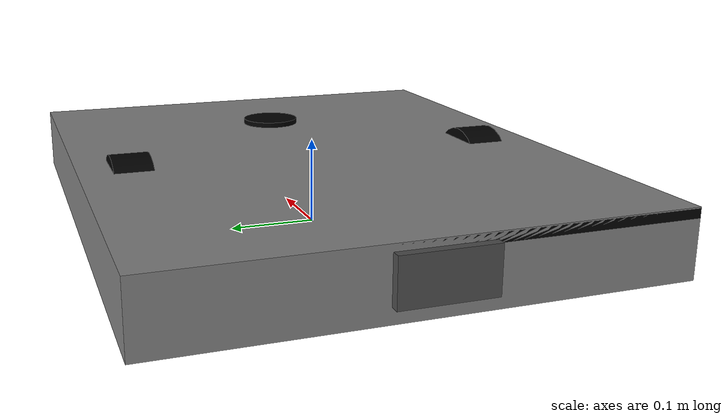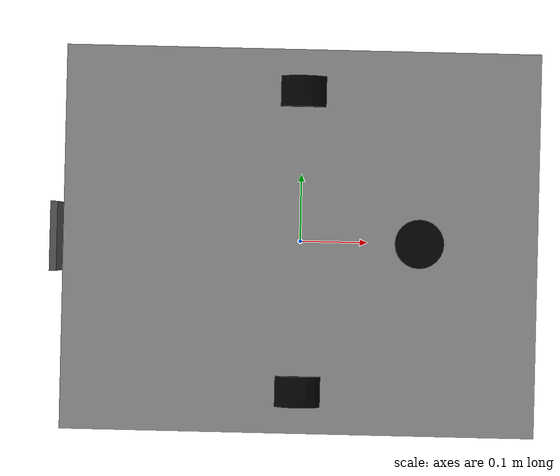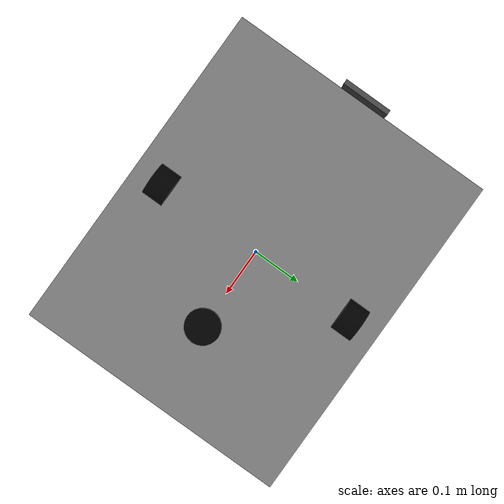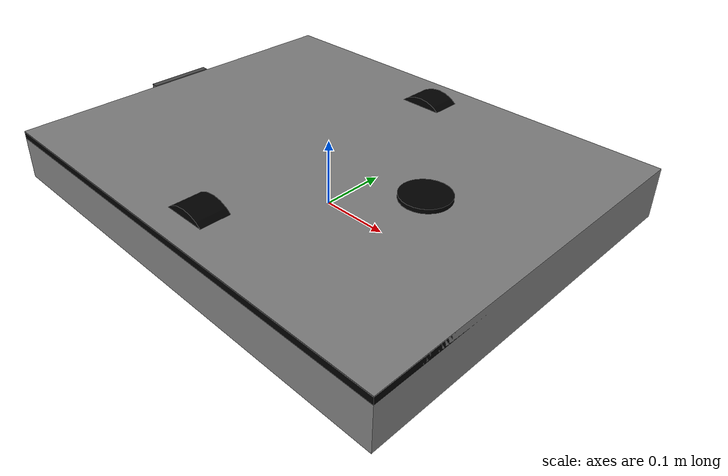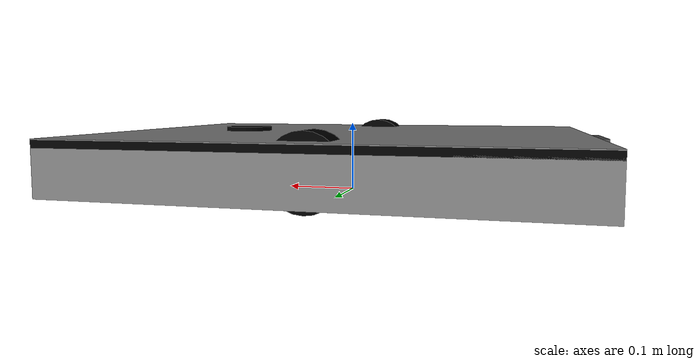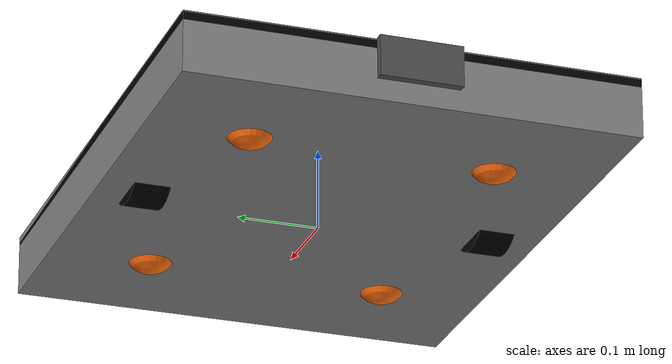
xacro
<?xml version="1.0"?>
<robot name="underlift_robot" xmlns:xacro="http://www.ros.org/wiki/xacro">

    <xacro:include filename="common_properties.xacro" />
    <xacro:include filename="mobile_base.xacro" />
    <xacro:include filename="underlift_robot_ros2_control.xacro" />
    <xacro:include filename="mobile_base_gazebo.xacro" />
    <xacro:include filename="camera.xacro" />
    <xacro:include filename="lidar.xacro" />
    <xacro:include filename="imu.xacro" />

</robot>

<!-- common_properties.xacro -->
<robot xmlns:xacro="http://www.ros.org/wiki/xacro">

    <material name="black">
        <color rgba="0.0 0.0 0.0 1.0"/>
    </material>

    <material name="dark">
        <color rgba="0.3 0.3 0.3 1.0"/>
    </material>
    <material name="light_black">
        <color rgba="0.4 0.4 0.4 1.0"/>
    </material>

    <material name="blue">
        <color rgba="0.0 0.0 0.8 1.0"/>
    </material>

    <material name="green">
        <color rgba="0.0 0.8 0.0 1.0"/>
    </material>

    <material name="grey">
        <color rgba="0.5 0.5 0.5 1.0"/>
    </material>

    <material name="orange">
        <color rgba="${255/255} ${108/255} ${10/255} 1.0"/>
    </material>

    <material name="brown">
        <color rgba="${222/255} ${207/255} ${195/255} 1.0"/>
    </material>

    <material name="red">
        <color rgba="0.8 0.0 0.0 1.0"/>
    </material>

    <material name="white">
        <color rgba="1.0 1.0 1.0 1.0"/>
    </material>

    <xacro:macro name="box_inertia" params="m x y z o_xyz o_rpy">
        <inertial>
            <mass value="${m}" />
            <origin xyz="${o_xyz}" rpy="${o_rpy}" />
            <inertia ixx="${(m/12) * (y*y + z*z)}" ixy="0" ixz="0"
                     iyy="${(m/12) * (x*x + z*z)}" iyz="0"
                     izz="${(m/12) * (x*x + y*y)}" />
        </inertial>
    </xacro:macro>

    <xacro:macro name="cylinder_inertia" params="m r l o_xyz o_rpy">
        <inertial>
            <mass value="${m}" />
            <origin xyz="${o_xyz}" rpy="${o_rpy}" />
            <inertia ixx="${(m/12) * (3*r*r + l*l)}" ixy="0" ixz="0"
                     iyy="${(m/12) * (3*r*r + l*l)}" iyz="0"
                     izz="${(m/2) * (r*r)}" />
        </inertial>
    </xacro:macro>

    <xacro:macro name="sphere_inertia" params="m r o_xyz o_rpy">
        <inertial>
            <mass value="${m}" />
            <origin xyz="${o_xyz}" rpy="${o_rpy}" />
            <inertia ixx="${(2/5) * m * r * r}" ixy="0" ixz="0"
                     iyy="${(2/5) * m * r * r}" iyz="0"
                     izz="${(2/5) * m * r * r}" />
        </inertial>
    </xacro:macro>

</robot>

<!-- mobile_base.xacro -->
<robot name="underlift_robot" xmlns:xacro="http://www.ros.org/wiki/xacro">

    <xacro:property name="base_length" value="0.679" />
    <xacro:property name="base_width" value="0.550" />
    <xacro:property name="base_height" value="0.075" />
    <xacro:property name="wheel_radius" value="0.05" />
    <xacro:property name="wheel_length" value="0.044" />
    <xacro:property name="caster_radius" value="0.035" />
    <xacro:property name="lift_height" value="0.005" />

    <link name="base_footprint" />

    <link name="base_link">
        <visual>
            <geometry>
                 <box size="${base_length} ${base_width} ${base_height}"/>
            </geometry>
            <origin xyz="0 0 0" rpy="0 0 0" />
            <material name="grey" />
        </visual>
        <collision>
            <geometry>
                <box size="${base_length} ${base_width} ${base_height}"/>
            </geometry>
            <origin xyz="0 0 0" rpy="0 0 0" />
        </collision>
        <xacro:box_inertia m="20.0" x="${base_length}" y="${base_width}" z="${base_height}"
                           o_xyz="0 0 ${base_height / 2.0}" o_rpy="0 0 0" />
    </link>

    <xacro:macro name="wheel_link" params="prefix">
        <link name="${prefix}_wheel_link">
            <visual>
                <geometry>
                    <cylinder radius="${wheel_radius}" length="${wheel_length}" />
                </geometry>
                <origin xyz="0 0 0" rpy="${pi / 2.0} 0 0" />
                <material name="black" />
            </visual>
            <collision>
                <geometry>
                    <cylinder radius="${wheel_radius}" length="${wheel_length}" />
                </geometry>
                <origin xyz="0 0 0" rpy="${pi / 2.0} 0 0" />
            </collision>
            <xacro:cylinder_inertia m="10.0" r="${wheel_radius}" l="${wheel_length}"
                                    o_xyz="0 0 0" o_rpy="${pi / 2.0} 0 0" />
        </link>
    </xacro:macro>

    <xacro:wheel_link prefix="right" />
    <xacro:wheel_link prefix="left" />

    <link name="front_right_caster_wheel_link">
        <visual>
            <geometry>
                <sphere radius="${caster_radius}" />
            </geometry>
            <origin xyz="0 0 0" rpy="0 0 0" />
            <material name="orange" />
        </visual>
        <collision>
            <geometry>
                <sphere radius="${caster_radius}" />
            </geometry>
            <origin xyz="0 0 0" rpy="0 0 0" />
        </collision>
        <xacro:sphere_inertia m="0.1" r="${caster_radius}"
                              o_xyz="0 0 0" o_rpy="0 0 0" />
    </link>

    <link name="front_left_caster_wheel_link">
        <visual>
            <geometry>
                <sphere radius="${caster_radius}" />
            </geometry>
            <origin xyz="0 0 0" rpy="0 0 0" />
            <material name="orange" />
        </visual>
        <collision>
            <geometry>
                <sphere radius="${caster_radius}" />
            </geometry>
            <origin xyz="0 0 0" rpy="0 0 0" />
        </collision>
        <xacro:sphere_inertia m="0.1" r="${caster_radius}"
                              o_xyz="0 0 0" o_rpy="0 0 0" />
    </link>

    <link name="back_left_caster_wheel_link">
        <visual>
            <geometry>
                <sphere radius="${caster_radius}" />
            </geometry>
            <origin xyz="0 0 0" rpy="0 0 0" />
            <material name="orange" />
        </visual>
        <collision>
            <geometry>
                <sphere radius="${caster_radius}" />
            </geometry>
            <origin xyz="0 0 0" rpy="0 0 0" />
        </collision>
        <xacro:sphere_inertia m="0.1" r="${caster_radius}"
                              o_xyz="0 0 0" o_rpy="0 0 0" />
    </link>

    <link name="back_right_caster_wheel_link">
        <visual>
            <geometry>
                <sphere radius="${caster_radius}" />
            </geometry>
            <origin xyz="0 0 0" rpy="0 0 0" />
            <material name="orange" />
        </visual>
        <collision>
            <geometry>
                <sphere radius="${caster_radius}" />
            </geometry>
            <origin xyz="0 0 0" rpy="0 0 0" />
        </collision>
        <xacro:sphere_inertia m="0.1" r="${caster_radius}"
                              o_xyz="0 0 0" o_rpy="0 0 0" />
    </link>

    <link name="lift_link">
        <visual>
            <geometry>
                <box size="${base_length / 4} ${base_width / 4} ${lift_height}"/>
            </geometry>
            <origin xyz="0 0 0" rpy="0 0 0"/>
            <material name="orange"/>
        </visual>
        <collision>
            <geometry>
                <box size="${base_length / 4} ${base_width / 4} ${lift_height}"/>
            </geometry>
            <origin xyz="0 0 0" rpy="0 0 0"/>
        </collision>
        <xacro:box_inertia m="1.0" x="${base_length / 4}" y="${base_width / 4}" z="${lift_height}"
                           o_xyz="0 0 0.01" o_rpy="0 0 0" />
    </link>

    <link name="lift_surface_link">
        <visual>
            <geometry>
                <box size="${base_length} ${base_width} 0.01"/>
            </geometry>
            <origin xyz="0 0 0" rpy="0 0 0"/>
            <material name="black"/>
        </visual>
        <collision>
            <geometry>
                <box size="${base_length} ${base_width} 0.01"/>
            </geometry>
            <origin xyz="0 0 0" rpy="0 0 0"/>
        </collision>
        <xacro:box_inertia m="10.0" x="${base_length}" y="${base_width}" z="0.01"
                           o_xyz="0 0 0.01" o_rpy="0 0 0" />
    </link>

    <joint name="base_joint" type="fixed">
        <parent link="base_footprint" />
        <child link="base_link" />
        <origin xyz="0 0 ${base_height / 2 + wheel_radius - base_height / 2}" rpy="0 0 0"/>
    </joint>

    <joint name="base_right_wheel_joint" type="continuous">
        <parent link="base_link" />
        <child link="right_wheel_link" />
        <origin xyz="0 -0.215 0" rpy="0 0 0" />
        <axis xyz="0 1 0" />
    </joint>

    <joint name="base_left_wheel_joint" type="continuous">
        <parent link="base_link" />
        <child link="left_wheel_link" />
        <origin xyz="0 0.215 0" rpy="0 0 0" />
        <axis xyz="0 1 0" />
    </joint>

    <joint name="base_front_right_caster_wheel_joint" type="fixed">
        <parent link="base_link" />
        <child link="front_right_caster_wheel_link" />
        <origin xyz="0.194 -0.149 ${-((base_height / 2 - caster_radius) + (wheel_radius - base_height / 2))}" rpy="0 0 0" />
    </joint>

    <joint name="base_front_left_caster_wheel_joint" type="fixed">
        <parent link="base_link" />
        <child link="front_left_caster_wheel_link" />
        <origin xyz="0.194 0.149 ${-((base_height / 2 - caster_radius) + (wheel_radius - base_height / 2))}" rpy="0 0 0" />
    </joint>

    <joint name="base_back_right_caster_wheel_joint" type="fixed">
        <parent link="base_link" />
        <child link="back_right_caster_wheel_link" />
        <origin xyz="-0.194 -0.149 ${-((base_height / 2 - caster_radius) + (wheel_radius - base_height / 2))}" rpy="0 0 0" />
    </joint>

    <joint name="base_back_left_caster_wheel_joint" type="fixed">
        <parent link="base_link" />
        <child link="back_left_caster_wheel_link" />
        <origin xyz="-0.194 0.149 ${-((base_height / 2 - caster_radius) + (wheel_radius - base_height / 2))}" rpy="0 0 0" />
    </joint>

    <joint name="lift_joint" type="prismatic">
        <parent link="base_link"/>
        <child  link="lift_link"/>
        <origin xyz="0 0 ${base_height / 4 + 0.01}" rpy="0 0 0"/>
        <axis xyz="0 0 1"/>
        <limit lower="0.0" upper="0.5" effort="5000.0" velocity="0.5"/>
    </joint>

    <joint name="lift_surface_joint" type="fixed">
        <parent link="lift_link"/>
        <child  link="lift_surface_link"/>
        <origin xyz="0 0 ${lift_height / 2}" rpy="0 0 0"/>
    </joint>

</robot>

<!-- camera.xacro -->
<robot xmlns:xacro="http://www.ros.org/wiki/xacro">

    <xacro:property name="camera_length" value="0.01" />
    <xacro:property name="camera_width" value="0.1" />
    <xacro:property name="camera_height" value="0.05" />

    <link name="camera_link">
        <visual>
            <geometry>
                <box size="${camera_length} ${camera_width} ${camera_height}" />
            </geometry>
            <material name="dark" />
        </visual>
        <collision>
            <geometry>
                <box size="${camera_length} ${camera_width} ${camera_height}" />
            </geometry>
        </collision>
        <xacro:box_inertia m="0.1" x="${camera_length}" y="${camera_width}" z="${camera_height}"
                           o_xyz="0 0 0" o_rpy="0 0 0" />
    </link>

    <joint name="base_camera_joint" type="fixed">
        <parent link="base_link" />
        <child link="camera_link" />
        <origin xyz="${-((base_length / 2) + (camera_length / 2) + 0.01)} 0 ${base_height / 4.0 - 0.01}" rpy="0 0 3.14" />
    </joint>

    <link name="camera_link_optical" />

    <joint name="camera_optical_joint" type="fixed">
        <origin xyz="0 0 0" rpy="${-pi/2} 0 ${-pi/2}"/>
        <parent link="camera_link"/>
        <child link="camera_link_optical"/>
    </joint>

    <gazebo reference="camera_link">
        <sensor name="camera" type="camera">
            <camera>
                <horizontal_fov>1.3962634</horizontal_fov>
                <image>
                    <width>640</width>
                    <height>480</height>
                    <format>R8G8B8</format>
                </image>
                <clip>
                    <near>0.1</near>
                    <far>15</far>
                </clip>
                <noise>
                    <type>gaussian</type>
                    <mean>0.0</mean>
                    <stddev>0.007</stddev>
                </noise>
                <optical_frame_id>camera_link_optical</optical_frame_id>
                <camera_info_topic>camera/camera_info</camera_info_topic>
            </camera>
            <always_on>1</always_on>
            <update_rate>20</update_rate>
            <visualize>true</visualize>
            <topic>camera/image_raw</topic>
        </sensor>
    </gazebo>

    <gazebo reference="camera_link">
      <sensor name="depth_camera" type="rgbd_camera">
        <camera>
          <horizontal_fov>1.3962634</horizontal_fov>
          <image>
            <width>640</width>
            <height>480</height>
          </image>
          <clip>
            <near>0.05</near>
            <far>3.0</far>
          </clip>
        </camera>
        <always_on>1</always_on>
        <gz_frame_id>camera_link_optical</gz_frame_id>
        <topic>depth_camera</topic>
        <update_rate>5</update_rate>
        <visualize>true</visualize>
      </sensor>
    </gazebo>

</robot>

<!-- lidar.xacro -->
<robot xmlns:xacro="http://www.ros.org/wiki/xacro">

    <xacro:property name="lidar_radius" value="0.035" />
    <xacro:property name="lidar_length" value="0.0125" />

    <link name="lidar_link">
        <visual>
            <geometry>
                <cylinder radius="${lidar_radius}" length="${lidar_length}" />
            </geometry>
            <origin xyz="0 0 0" rpy="0 0 0" />
            <material name="black" />
        </visual>
        <collision>
            <geometry>
                <cylinder radius="${lidar_radius}" length="${lidar_length}" />
            </geometry>
        </collision>
        <xacro:cylinder_inertia m="1.0" r="${lidar_radius}" l="${lidar_length}"
                                o_xyz="0 0 0" o_rpy="0 0 0" />
    </link>

    <joint name="base_lidar_joint" type="fixed">
        <parent link="base_link" />
        <child link="lidar_link" />
        <origin xyz="${base_length / 4.0} 0 ${base_height / 2.0}" rpy="0 0 3.14159265359" />
    </joint>

  <gazebo reference="lidar_link">
    <sensor name="lidar" type="gpu_lidar">
      <always_on>true</always_on>
      <visualize>true</visualize>
      <topic>scan</topic>
      <update_rate>10</update_rate>
      <gz_frame_id>lidar_link</gz_frame_id>
      <lidar>
        <scan>
          <horizontal>
            <samples>1168</samples>
            <resolution>1.00000</resolution>
            <min_angle>1.1344640138</min_angle>
            <max_angle>5.1487212934</max_angle>
          </horizontal>
        </scan>
        <range>
          <min>0.050000</min>
          <max>30.0</max>
          <resolution>0.02</resolution>
        </range>
        <noise>
          <type>gaussian</type>
          <mean>0.0</mean>
          <stddev>0.01</stddev>
        </noise>
      </lidar>
    </sensor>
  </gazebo>

</robot>

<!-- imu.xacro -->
<robot xmlns:xacro="http://www.ros.org/wiki/xacro">

    <link name="imu_link"/>

    <!--Normal situation-->
    <joint name="base_imu_joint" type="fixed">
        <parent link="base_link"/>
        <child link="imu_link"/>
        <origin xyz="0 0 ${base_height / 2}" rpy="0 0 0"/>
    </joint>
    <!--/Normal situation-->

    <!--Slope situation-->
    <!--/Slope situation-->

    <gazebo reference="imu_link">
        <sensor name="imu" type="imu">
          <always_on>true</always_on>
          <update_rate>100</update_rate>
          <topic>/imu/data</topic>
          <gz_frame_id>imu_link</gz_frame_id>
          <imu>
            <angular_velocity>
              <x>
                <noise type="gaussian">
                  <mean>0.0</mean>
                  <stddev>2e-4</stddev>
                </noise>
              </x>
              <y>
                <noise type="gaussian">
                  <mean>0.0</mean>
                  <stddev>2e-4</stddev>
                </noise>
              </y>
              <z>
                <noise type="gaussian">
                  <mean>0.0</mean>
                  <stddev>2e-4</stddev>
                </noise>
              </z>
            </angular_velocity>
            <linear_acceleration>
              <x>
                <noise type="gaussian">
                  <mean>0.0</mean>
                  <stddev>1.7e-2</stddev>
                </noise>
              </x>
              <y>
                <noise type="gaussian">
                  <mean>0.0</mean>
                  <stddev>1.7e-2</stddev>
                </noise>
              </y>
              <z>
                <noise type="gaussian">
                  <mean>0.0</mean>
                  <stddev>1.7e-2</stddev>
                </noise>
              </z>
            </linear_acceleration>
          </imu>
        </sensor>
    </gazebo>

</robot>
